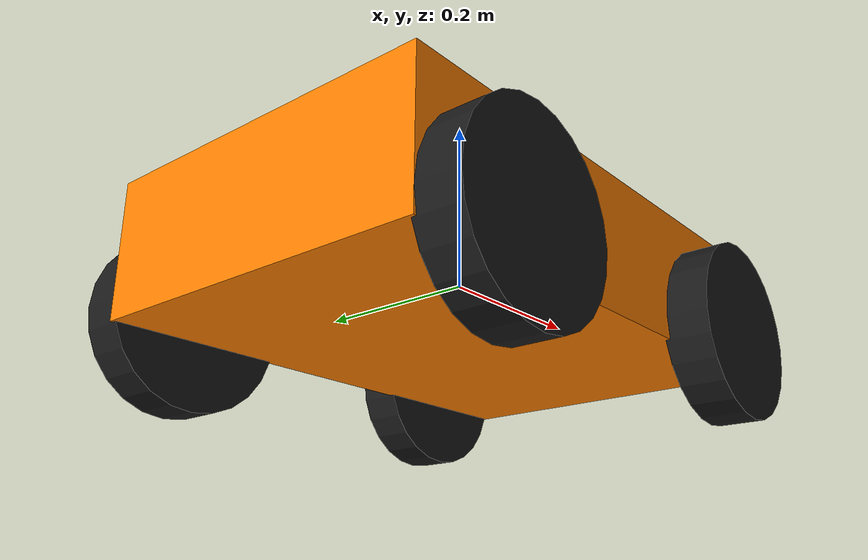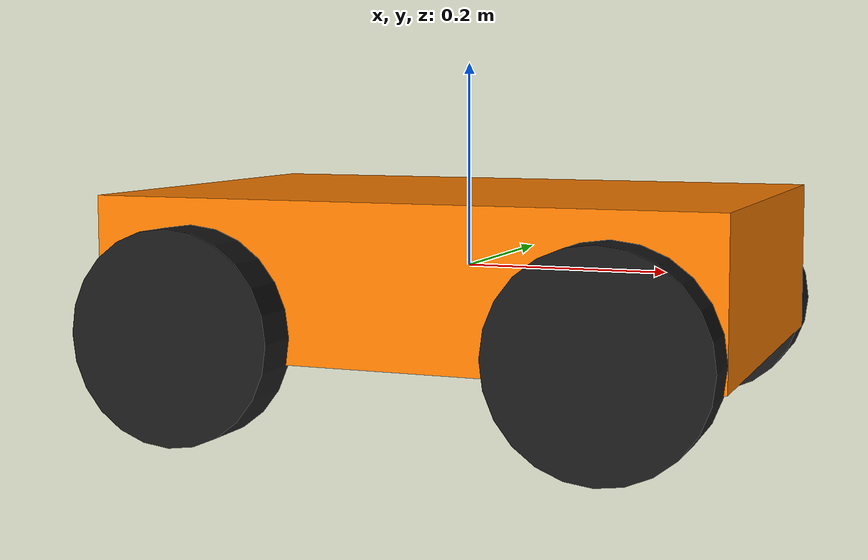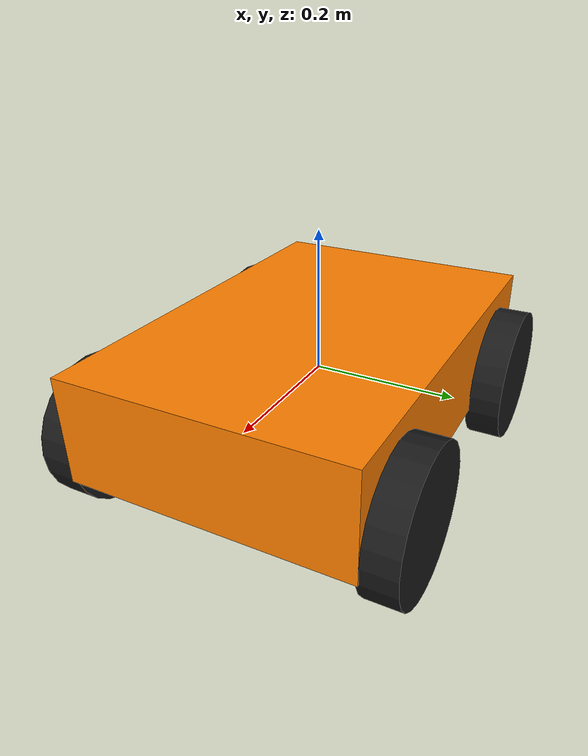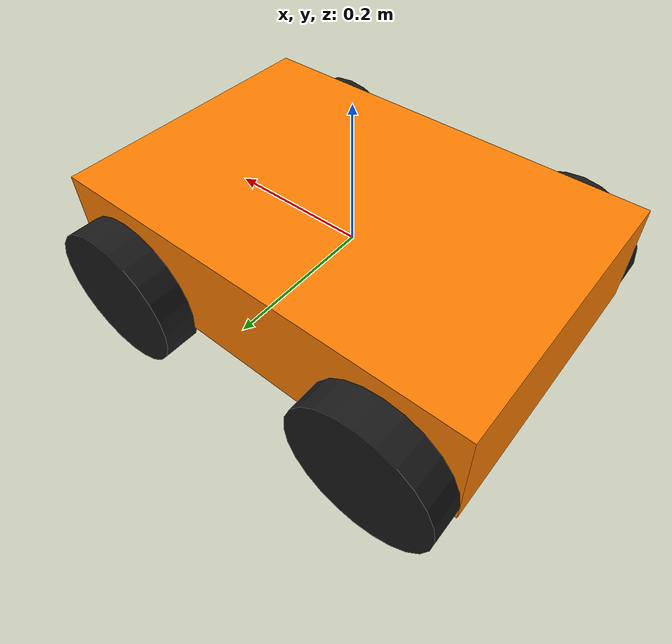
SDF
<?xml version="1.0" ?>
<sdf version="1.9">
  <model name="ground_vehicle">

    <link name="chassis">
      <inertial>
        <mass>5.0</mass>
        <inertia><ixx>0.13</ixx><iyy>0.30</iyy><izz>0.43</izz></inertia>
      </inertial>
      <visual name="chassis_visual">
        <geometry><box><size>0.6 0.4 0.15</size></box></geometry>
        <material><ambient>1.0 0.5 0.0 1</ambient><diffuse>1.0 0.5 0.0 1</diffuse></material>
      </visual>
      <collision name="chassis_collision">
        <geometry><box><size>0.6 0.4 0.15</size></box></geometry>
      </collision>
    </link>

    <!-- Front Left Wheel -->
    <link name="front_left_wheel">
      <pose>0.2 0.22 -0.05 -1.5707 0 0</pose>
      <inertial><mass>0.5</mass><inertia><ixx>0.02</ixx><iyy>0.02</iyy><izz>0.04</izz></inertia></inertial>
      <visual name="visual"><geometry><cylinder><radius>0.1</radius><length>0.05</length></cylinder></geometry>
        <material><ambient>0.1 0.1 0.1 1</ambient></material></visual>
      <collision name="collision"><geometry><cylinder><radius>0.1</radius><length>0.05</length></cylinder></geometry></collision>
    </link>

    <!-- Front Right Wheel -->
    <link name="front_right_wheel">
      <pose>0.2 -0.22 -0.05 -1.5707 0 0</pose>
      <inertial><mass>0.5</mass><inertia><ixx>0.02</ixx><iyy>0.02</iyy><izz>0.04</izz></inertia></inertial>
      <visual name="visual"><geometry><cylinder><radius>0.1</radius><length>0.05</length></cylinder></geometry>
        <material><ambient>0.1 0.1 0.1 1</ambient></material></visual>
      <collision name="collision"><geometry><cylinder><radius>0.1</radius><length>0.05</length></cylinder></geometry></collision>
    </link>

    <!-- Rear Left Wheel -->
    <link name="rear_left_wheel">
      <pose>-0.2 0.22 -0.05 -1.5707 0 0</pose>
      <inertial><mass>0.5</mass><inertia><ixx>0.02</ixx><iyy>0.02</iyy><izz>0.04</izz></inertia></inertial>
      <visual name="visual"><geometry><cylinder><radius>0.1</radius><length>0.05</length></cylinder></geometry>
        <material><ambient>0.1 0.1 0.1 1</ambient></material></visual>
      <collision name="collision"><geometry><cylinder><radius>0.1</radius><length>0.05</length></cylinder></geometry></collision>
    </link>

    <!-- Rear Right Wheel -->
    <link name="rear_right_wheel">
      <pose>-0.2 -0.22 -0.05 -1.5707 0 0</pose>
      <inertial><mass>0.5</mass><inertia><ixx>0.02</ixx><iyy>0.02</iyy><izz>0.04</izz></inertia></inertial>
      <visual name="visual"><geometry><cylinder><radius>0.1</radius><length>0.05</length></cylinder></geometry>
        <material><ambient>0.1 0.1 0.1 1</ambient></material></visual>
      <collision name="collision"><geometry><cylinder><radius>0.1</radius><length>0.05</length></cylinder></geometry></collision>
    </link>

    <!-- Front Left Wheel Joint -->
    <joint name="front_left_wheel_joint" type="revolute">
      <parent>chassis</parent><child>front_left_wheel</child>
      <axis><xyz>0 0 1</xyz></axis>
    </joint>

    <!-- Front Right Wheel Joint -->
    <joint name="front_right_wheel_joint" type="revolute">
      <parent>chassis</parent><child>front_right_wheel</child>
      <axis><xyz>0 0 1</xyz></axis>
    </joint>

    <!-- Rear Left Wheel Joint -->
    <joint name="rear_left_wheel_joint" type="revolute">
      <parent>chassis</parent><child>rear_left_wheel</child>
      <axis><xyz>0 0 1</xyz></axis>
    </joint>

    <!-- Rear Right Wheel Joint -->
    <joint name="rear_right_wheel_joint" type="revolute">
      <parent>chassis</parent><child>rear_right_wheel</child>
      <axis><xyz>0 0 1</xyz></axis>
    </joint>

    <!-- Differential drive plugin - uses rear wheels for driving -->
    <plugin filename="gz-sim-diff-drive-system"
            name="gz::sim::systems::DiffDrive">
      <left_joint>rear_left_wheel_joint</left_joint>
      <right_joint>rear_right_wheel_joint</right_joint>
      <wheel_separation>0.44</wheel_separation>
      <wheel_radius>0.1</wheel_radius>
      <topic>/ground_vehicle_orange/cmd_vel</topic>
      <odom_topic>/ground_vehicle_orange/odom</odom_topic>
    </plugin>

  </model>
</sdf>
